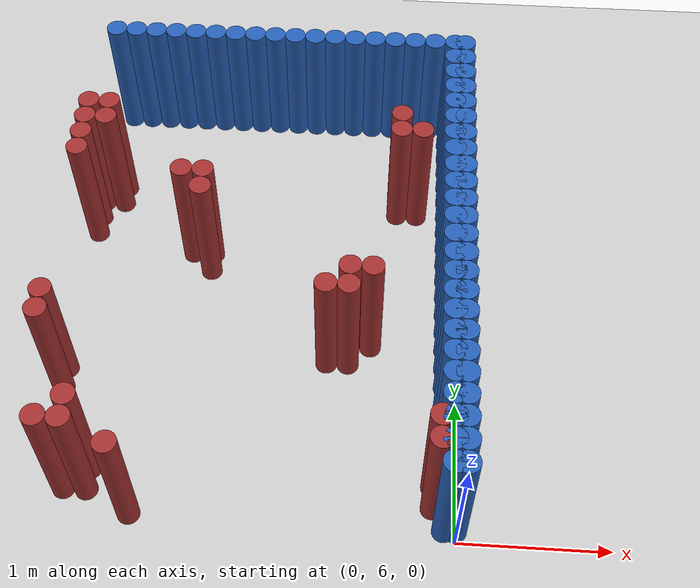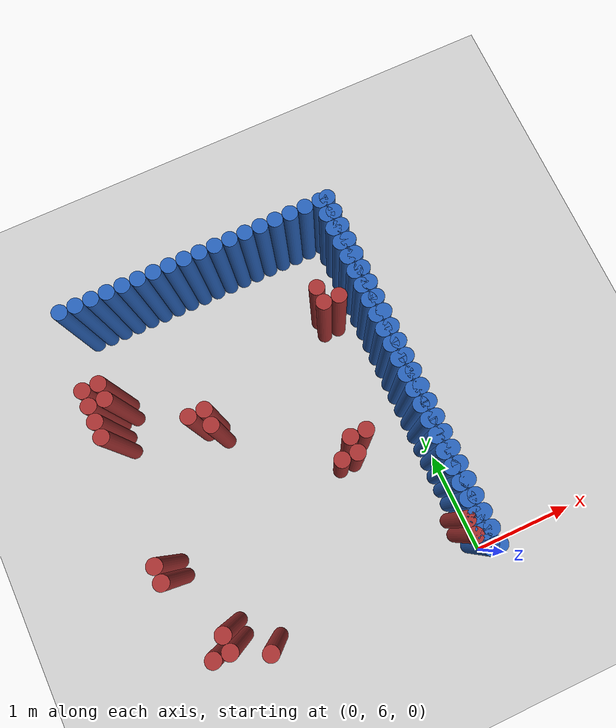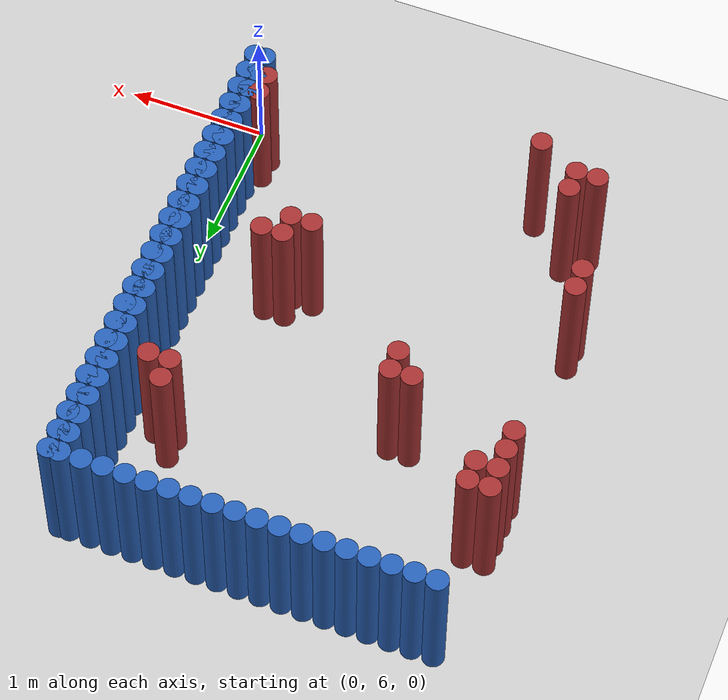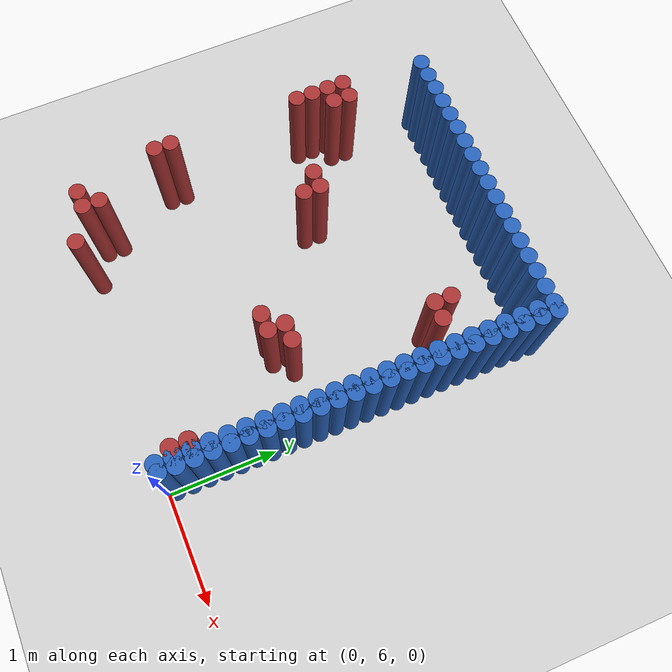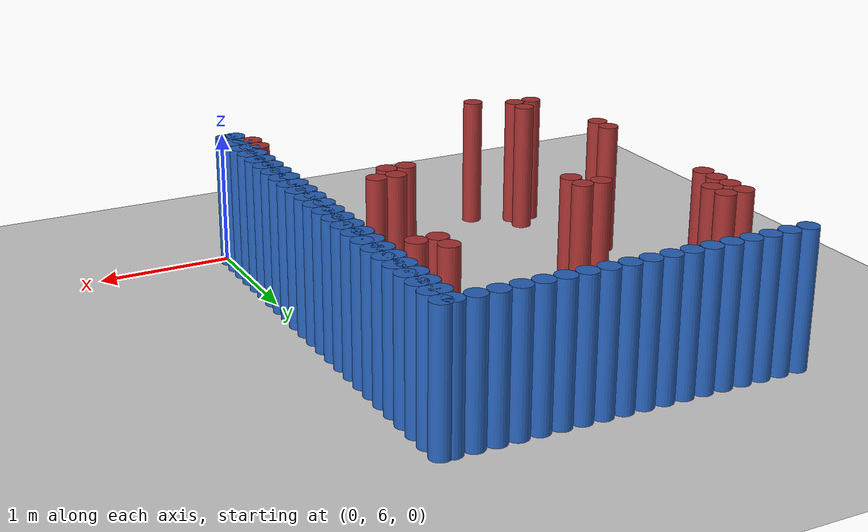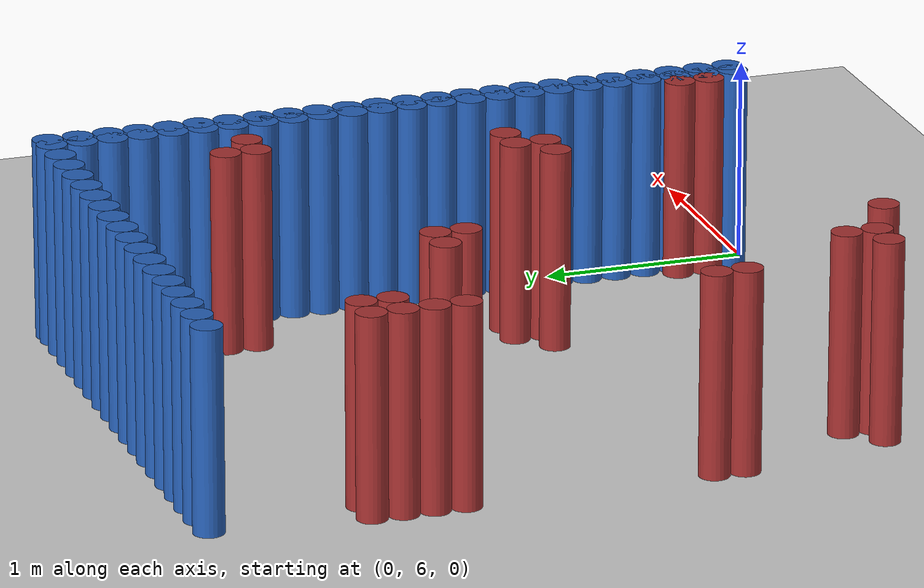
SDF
<sdf version="1.6">
 <world name="barn_world">
  <model name="ground_plane">
   <static>1</static>
   <link name="link">
    <collision name="collision">
     <geometry><plane><normal>0 0 1</normal><size>100 100</size></plane></geometry>
    </collision>
    <visual name="visual">
     <geometry><plane><normal>0 0 1</normal><size>100 100</size></plane></geometry>
     <material>
      <script><uri>file://media/materials/scripts/gazebo.material</uri><name>Gazebo/Grey</name></script>
     </material>
    </visual>
   </link>
  </model>
  <model name="unit_cylinder_201">
   <static>1</static>
   <pose>-2.7000 6.9750 0.5 0 0 0</pose>
   <link name="link">
    <collision name="collision">
     <geometry><cylinder><radius>0.075</radius><length>1</length></cylinder></geometry>
    </collision>
    <visual name="visual">
     <geometry><cylinder><radius>0.075</radius><length>1</length></cylinder></geometry>
     <material><ambient>0.648 0.192 0.192 1</ambient><diffuse>0.648 0.192 0.192 1</diffuse></material>
    </visual>
   </link>
  </model>
  <model name="unit_cylinder_202">
   <static>1</static>
   <pose>-2.7000 7.1250 0.5 0 0 0</pose>
   <link name="link">
    <collision name="collision">
     <geometry><cylinder><radius>0.075</radius><length>1</length></cylinder></geometry>
    </collision>
    <visual name="visual">
     <geometry><cylinder><radius>0.075</radius><length>1</length></cylinder></geometry>
     <material><ambient>0.648 0.192 0.192 1</ambient><diffuse>0.648 0.192 0.192 1</diffuse></material>
    </visual>
   </link>
  </model>
  <model name="unit_cylinder_203">
   <static>1</static>
   <pose>-2.7000 8.3250 0.5 0 0 0</pose>
   <link name="link">
    <collision name="collision">
     <geometry><cylinder><radius>0.075</radius><length>1</length></cylinder></geometry>
    </collision>
    <visual name="visual">
     <geometry><cylinder><radius>0.075</radius><length>1</length></cylinder></geometry>
     <material><ambient>0.648 0.192 0.192 1</ambient><diffuse>0.648 0.192 0.192 1</diffuse></material>
    </visual>
   </link>
  </model>
  <model name="unit_cylinder_204">
   <static>1</static>
   <pose>-2.7000 8.4750 0.5 0 0 0</pose>
   <link name="link">
    <collision name="collision">
     <geometry><cylinder><radius>0.075</radius><length>1</length></cylinder></geometry>
    </collision>
    <visual name="visual">
     <geometry><cylinder><radius>0.075</radius><length>1</length></cylinder></geometry>
     <material><ambient>0.648 0.192 0.192 1</ambient><diffuse>0.648 0.192 0.192 1</diffuse></material>
    </visual>
   </link>
  </model>
  <model name="unit_cylinder_205">
   <static>1</static>
   <pose>-2.7000 8.6250 0.5 0 0 0</pose>
   <link name="link">
    <collision name="collision">
     <geometry><cylinder><radius>0.075</radius><length>1</length></cylinder></geometry>
    </collision>
    <visual name="visual">
     <geometry><cylinder><radius>0.075</radius><length>1</length></cylinder></geometry>
     <material><ambient>0.648 0.192 0.192 1</ambient><diffuse>0.648 0.192 0.192 1</diffuse></material>
    </visual>
   </link>
  </model>
  <model name="unit_cylinder_206">
   <static>1</static>
   <pose>-2.7000 8.7750 0.5 0 0 0</pose>
   <link name="link">
    <collision name="collision">
     <geometry><cylinder><radius>0.075</radius><length>1</length></cylinder></geometry>
    </collision>
    <visual name="visual">
     <geometry><cylinder><radius>0.075</radius><length>1</length></cylinder></geometry>
     <material><ambient>0.648 0.192 0.192 1</ambient><diffuse>0.648 0.192 0.192 1</diffuse></material>
    </visual>
   </link>
  </model>
  <model name="unit_cylinder_209">
   <static>1</static>
   <pose>-2.5500 6.2250 0.5 0 0 0</pose>
   <link name="link">
    <collision name="collision">
     <geometry><cylinder><radius>0.075</radius><length>1</length></cylinder></geometry>
    </collision>
    <visual name="visual">
     <geometry><cylinder><radius>0.075</radius><length>1</length></cylinder></geometry>
     <material><ambient>0.648 0.192 0.192 1</ambient><diffuse>0.648 0.192 0.192 1</diffuse></material>
    </visual>
   </link>
  </model>
  <model name="unit_cylinder_210">
   <static>1</static>
   <pose>-2.5500 8.6250 0.5 0 0 0</pose>
   <link name="link">
    <collision name="collision">
     <geometry><cylinder><radius>0.075</radius><length>1</length></cylinder></geometry>
    </collision>
    <visual name="visual">
     <geometry><cylinder><radius>0.075</radius><length>1</length></cylinder></geometry>
     <material><ambient>0.648 0.192 0.192 1</ambient><diffuse>0.648 0.192 0.192 1</diffuse></material>
    </visual>
   </link>
  </model>
  <model name="unit_cylinder_211">
   <static>1</static>
   <pose>-2.5500 8.7750 0.5 0 0 0</pose>
   <link name="link">
    <collision name="collision">
     <geometry><cylinder><radius>0.075</radius><length>1</length></cylinder></geometry>
    </collision>
    <visual name="visual">
     <geometry><cylinder><radius>0.075</radius><length>1</length></cylinder></geometry>
     <material><ambient>0.648 0.192 0.192 1</ambient><diffuse>0.648 0.192 0.192 1</diffuse></material>
    </visual>
   </link>
  </model>
  <model name="unit_cylinder_213">
   <static>1</static>
   <pose>-2.4000 6.2250 0.5 0 0 0</pose>
   <link name="link">
    <collision name="collision">
     <geometry><cylinder><radius>0.075</radius><length>1</length></cylinder></geometry>
    </collision>
    <visual name="visual">
     <geometry><cylinder><radius>0.075</radius><length>1</length></cylinder></geometry>
     <material><ambient>0.648 0.192 0.192 1</ambient><diffuse>0.648 0.192 0.192 1</diffuse></material>
    </visual>
   </link>
  </model>
  <model name="unit_cylinder_214">
   <static>1</static>
   <pose>-2.4000 6.3750 0.5 0 0 0</pose>
   <link name="link">
    <collision name="collision">
     <geometry><cylinder><radius>0.075</radius><length>1</length></cylinder></geometry>
    </collision>
    <visual name="visual">
     <geometry><cylinder><radius>0.075</radius><length>1</length></cylinder></geometry>
     <material><ambient>0.648 0.192 0.192 1</ambient><diffuse>0.648 0.192 0.192 1</diffuse></material>
    </visual>
   </link>
  </model>
  <model name="unit_cylinder_217">
   <static>1</static>
   <pose>-2.1000 6.0750 0.5 0 0 0</pose>
   <link name="link">
    <collision name="collision">
     <geometry><cylinder><radius>0.075</radius><length>1</length></cylinder></geometry>
    </collision>
    <visual name="visual">
     <geometry><cylinder><radius>0.075</radius><length>1</length></cylinder></geometry>
     <material><ambient>0.648 0.192 0.192 1</ambient><diffuse>0.648 0.192 0.192 1</diffuse></material>
    </visual>
   </link>
  </model>
  <model name="unit_cylinder_219">
   <static>1</static>
   <pose>-1.9500 8.1750 0.5 0 0 0</pose>
   <link name="link">
    <collision name="collision">
     <geometry><cylinder><radius>0.075</radius><length>1</length></cylinder></geometry>
    </collision>
    <visual name="visual">
     <geometry><cylinder><radius>0.075</radius><length>1</length></cylinder></geometry>
     <material><ambient>0.648 0.192 0.192 1</ambient><diffuse>0.648 0.192 0.192 1</diffuse></material>
    </visual>
   </link>
  </model>
  <model name="unit_cylinder_220">
   <static>1</static>
   <pose>-1.8000 8.0250 0.5 0 0 0</pose>
   <link name="link">
    <collision name="collision">
     <geometry><cylinder><radius>0.075</radius><length>1</length></cylinder></geometry>
    </collision>
    <visual name="visual">
     <geometry><cylinder><radius>0.075</radius><length>1</length></cylinder></geometry>
     <material><ambient>0.648 0.192 0.192 1</ambient><diffuse>0.648 0.192 0.192 1</diffuse></material>
    </visual>
   </link>
  </model>
  <model name="unit_cylinder_221">
   <static>1</static>
   <pose>-1.8000 8.1750 0.5 0 0 0</pose>
   <link name="link">
    <collision name="collision">
     <geometry><cylinder><radius>0.075</radius><length>1</length></cylinder></geometry>
    </collision>
    <visual name="visual">
     <geometry><cylinder><radius>0.075</radius><length>1</length></cylinder></geometry>
     <material><ambient>0.648 0.192 0.192 1</ambient><diffuse>0.648 0.192 0.192 1</diffuse></material>
    </visual>
   </link>
  </model>
  <model name="unit_cylinder_229">
   <static>1</static>
   <pose>-0.9000 7.2750 0.5 0 0 0</pose>
   <link name="link">
    <collision name="collision">
     <geometry><cylinder><radius>0.075</radius><length>1</length></cylinder></geometry>
    </collision>
    <visual name="visual">
     <geometry><cylinder><radius>0.075</radius><length>1</length></cylinder></geometry>
     <material><ambient>0.648 0.192 0.192 1</ambient><diffuse>0.648 0.192 0.192 1</diffuse></material>
    </visual>
   </link>
  </model>
  <model name="unit_cylinder_230">
   <static>1</static>
   <pose>-0.7500 7.2750 0.5 0 0 0</pose>
   <link name="link">
    <collision name="collision">
     <geometry><cylinder><radius>0.075</radius><length>1</length></cylinder></geometry>
    </collision>
    <visual name="visual">
     <geometry><cylinder><radius>0.075</radius><length>1</length></cylinder></geometry>
     <material><ambient>0.648 0.192 0.192 1</ambient><diffuse>0.648 0.192 0.192 1</diffuse></material>
    </visual>
   </link>
  </model>
  <model name="unit_cylinder_231">
   <static>1</static>
   <pose>-0.7500 7.4250 0.5 0 0 0</pose>
   <link name="link">
    <collision name="collision">
     <geometry><cylinder><radius>0.075</radius><length>1</length></cylinder></geometry>
    </collision>
    <visual name="visual">
     <geometry><cylinder><radius>0.075</radius><length>1</length></cylinder></geometry>
     <material><ambient>0.648 0.192 0.192 1</ambient><diffuse>0.648 0.192 0.192 1</diffuse></material>
    </visual>
   </link>
  </model>
  <model name="unit_cylinder_232">
   <static>1</static>
   <pose>-0.6000 7.4250 0.5 0 0 0</pose>
   <link name="link">
    <collision name="collision">
     <geometry><cylinder><radius>0.075</radius><length>1</length></cylinder></geometry>
    </collision>
    <visual name="visual">
     <geometry><cylinder><radius>0.075</radius><length>1</length></cylinder></geometry>
     <material><ambient>0.648 0.192 0.192 1</ambient><diffuse>0.648 0.192 0.192 1</diffuse></material>
    </visual>
   </link>
  </model>
  <model name="unit_cylinder_233">
   <static>1</static>
   <pose>-0.4500 8.6250 0.5 0 0 0</pose>
   <link name="link">
    <collision name="collision">
     <geometry><cylinder><radius>0.075</radius><length>1</length></cylinder></geometry>
    </collision>
    <visual name="visual">
     <geometry><cylinder><radius>0.075</radius><length>1</length></cylinder></geometry>
     <material><ambient>0.648 0.192 0.192 1</ambient><diffuse>0.648 0.192 0.192 1</diffuse></material>
    </visual>
   </link>
  </model>
  <model name="unit_cylinder_234">
   <static>1</static>
   <pose>-0.4500 8.7750 0.5 0 0 0</pose>
   <link name="link">
    <collision name="collision">
     <geometry><cylinder><radius>0.075</radius><length>1</length></cylinder></geometry>
    </collision>
    <visual name="visual">
     <geometry><cylinder><radius>0.075</radius><length>1</length></cylinder></geometry>
     <material><ambient>0.648 0.192 0.192 1</ambient><diffuse>0.648 0.192 0.192 1</diffuse></material>
    </visual>
   </link>
  </model>
  <model name="unit_cylinder_235">
   <static>1</static>
   <pose>-0.3000 8.6250 0.5 0 0 0</pose>
   <link name="link">
    <collision name="collision">
     <geometry><cylinder><radius>0.075</radius><length>1</length></cylinder></geometry>
    </collision>
    <visual name="visual">
     <geometry><cylinder><radius>0.075</radius><length>1</length></cylinder></geometry>
     <material><ambient>0.648 0.192 0.192 1</ambient><diffuse>0.648 0.192 0.192 1</diffuse></material>
    </visual>
   </link>
  </model>
  <model name="unit_cylinder_237">
   <static>1</static>
   <pose>-0.1500 6.2250 0.5 0 0 0</pose>
   <link name="link">
    <collision name="collision">
     <geometry><cylinder><radius>0.075</radius><length>1</length></cylinder></geometry>
    </collision>
    <visual name="visual">
     <geometry><cylinder><radius>0.075</radius><length>1</length></cylinder></geometry>
     <material><ambient>0.648 0.192 0.192 1</ambient><diffuse>0.648 0.192 0.192 1</diffuse></material>
    </visual>
   </link>
  </model>
  <model name="unit_cylinder_238">
   <static>1</static>
   <pose>-0.1500 6.3750 0.5 0 0 0</pose>
   <link name="link">
    <collision name="collision">
     <geometry><cylinder><radius>0.075</radius><length>1</length></cylinder></geometry>
    </collision>
    <visual name="visual">
     <geometry><cylinder><radius>0.075</radius><length>1</length></cylinder></geometry>
     <material><ambient>0.648 0.192 0.192 1</ambient><diffuse>0.648 0.192 0.192 1</diffuse></material>
    </visual>
   </link>
  </model>
  <model name="unit_cylinder_245">
   <static>1</static>
   <pose>0.0000 6.0750 0.5 0 0 0</pose>
   <link name="link">
    <collision name="collision">
     <geometry><cylinder><radius>0.075</radius><length>1</length></cylinder></geometry>
    </collision>
    <visual name="visual">
     <geometry><cylinder><radius>0.075</radius><length>1</length></cylinder></geometry>
     <material><ambient>0.152 0.379 0.72 1</ambient><diffuse>0.152 0.379 0.72 1</diffuse></material>
    </visual>
   </link>
  </model>
  <model name="unit_cylinder_246">
   <static>1</static>
   <pose>0.0000 6.2250 0.5 0 0 0</pose>
   <link name="link">
    <collision name="collision">
     <geometry><cylinder><radius>0.075</radius><length>1</length></cylinder></geometry>
    </collision>
    <visual name="visual">
     <geometry><cylinder><radius>0.075</radius><length>1</length></cylinder></geometry>
     <material><ambient>0.152 0.379 0.72 1</ambient><diffuse>0.152 0.379 0.72 1</diffuse></material>
    </visual>
   </link>
  </model>
  <model name="unit_cylinder_247">
   <static>1</static>
   <pose>0.0000 6.3750 0.5 0 0 0</pose>
   <link name="link">
    <collision name="collision">
     <geometry><cylinder><radius>0.075</radius><length>1</length></cylinder></geometry>
    </collision>
    <visual name="visual">
     <geometry><cylinder><radius>0.075</radius><length>1</length></cylinder></geometry>
     <material><ambient>0.152 0.379 0.72 1</ambient><diffuse>0.152 0.379 0.72 1</diffuse></material>
    </visual>
   </link>
  </model>
  <model name="unit_cylinder_248">
   <static>1</static>
   <pose>0.0000 6.5250 0.5 0 0 0</pose>
   <link name="link">
    <collision name="collision">
     <geometry><cylinder><radius>0.075</radius><length>1</length></cylinder></geometry>
    </collision>
    <visual name="visual">
     <geometry><cylinder><radius>0.075</radius><length>1</length></cylinder></geometry>
     <material><ambient>0.152 0.379 0.72 1</ambient><diffuse>0.152 0.379 0.72 1</diffuse></material>
    </visual>
   </link>
  </model>
  <model name="unit_cylinder_249">
   <static>1</static>
   <pose>0.0000 6.6750 0.5 0 0 0</pose>
   <link name="link">
    <collision name="collision">
     <geometry><cylinder><radius>0.075</radius><length>1</length></cylinder></geometry>
    </collision>
    <visual name="visual">
     <geometry><cylinder><radius>0.075</radius><length>1</length></cylinder></geometry>
     <material><ambient>0.152 0.379 0.72 1</ambient><diffuse>0.152 0.379 0.72 1</diffuse></material>
    </visual>
   </link>
  </model>
  <model name="unit_cylinder_250">
   <static>1</static>
   <pose>0.0000 6.8250 0.5 0 0 0</pose>
   <link name="link">
    <collision name="collision">
     <geometry><cylinder><radius>0.075</radius><length>1</length></cylinder></geometry>
    </collision>
    <visual name="visual">
     <geometry><cylinder><radius>0.075</radius><length>1</length></cylinder></geometry>
     <material><ambient>0.152 0.379 0.72 1</ambient><diffuse>0.152 0.379 0.72 1</diffuse></material>
    </visual>
   </link>
  </model>
  <model name="unit_cylinder_251">
   <static>1</static>
   <pose>0.0000 6.9750 0.5 0 0 0</pose>
   <link name="link">
    <collision name="collision">
     <geometry><cylinder><radius>0.075</radius><length>1</length></cylinder></geometry>
    </collision>
    <visual name="visual">
     <geometry><cylinder><radius>0.075</radius><length>1</length></cylinder></geometry>
     <material><ambient>0.152 0.379 0.72 1</ambient><diffuse>0.152 0.379 0.72 1</diffuse></material>
    </visual>
   </link>
  </model>
  <model name="unit_cylinder_252">
   <static>1</static>
   <pose>0.0000 7.1250 0.5 0 0 0</pose>
   <link name="link">
    <collision name="collision">
     <geometry><cylinder><radius>0.075</radius><length>1</length></cylinder></geometry>
    </collision>
    <visual name="visual">
     <geometry><cylinder><radius>0.075</radius><length>1</length></cylinder></geometry>
     <material><ambient>0.152 0.379 0.72 1</ambient><diffuse>0.152 0.379 0.72 1</diffuse></material>
    </visual>
   </link>
  </model>
  <model name="unit_cylinder_253">
   <static>1</static>
   <pose>0.0000 7.2750 0.5 0 0 0</pose>
   <link name="link">
    <collision name="collision">
     <geometry><cylinder><radius>0.075</radius><length>1</length></cylinder></geometry>
    </collision>
    <visual name="visual">
     <geometry><cylinder><radius>0.075</radius><length>1</length></cylinder></geometry>
     <material><ambient>0.152 0.379 0.72 1</ambient><diffuse>0.152 0.379 0.72 1</diffuse></material>
    </visual>
   </link>
  </model>
  <model name="unit_cylinder_254">
   <static>1</static>
   <pose>0.0000 7.4250 0.5 0 0 0</pose>
   <link name="link">
    <collision name="collision">
     <geometry><cylinder><radius>0.075</radius><length>1</length></cylinder></geometry>
    </collision>
    <visual name="visual">
     <geometry><cylinder><radius>0.075</radius><length>1</length></cylinder></geometry>
     <material><ambient>0.152 0.379 0.72 1</ambient><diffuse>0.152 0.379 0.72 1</diffuse></material>
    </visual>
   </link>
  </model>
  <model name="unit_cylinder_255">
   <static>1</static>
   <pose>0.0000 7.5750 0.5 0 0 0</pose>
   <link name="link">
    <collision name="collision">
     <geometry><cylinder><radius>0.075</radius><length>1</length></cylinder></geometry>
    </collision>
    <visual name="visual">
     <geometry><cylinder><radius>0.075</radius><length>1</length></cylinder></geometry>
     <material><ambient>0.152 0.379 0.72 1</ambient><diffuse>0.152 0.379 0.72 1</diffuse></material>
    </visual>
   </link>
  </model>
  <model name="unit_cylinder_256">
   <static>1</static>
   <pose>0.0000 7.7250 0.5 0 0 0</pose>
   <link name="link">
    <collision name="collision">
     <geometry><cylinder><radius>0.075</radius><length>1</length></cylinder></geometry>
    </collision>
    <visual name="visual">
     <geometry><cylinder><radius>0.075</radius><length>1</length></cylinder></geometry>
     <material><ambient>0.152 0.379 0.72 1</ambient><diffuse>0.152 0.379 0.72 1</diffuse></material>
    </visual>
   </link>
  </model>
  <model name="unit_cylinder_257">
   <static>1</static>
   <pose>0.0000 7.8750 0.5 0 0 0</pose>
   <link name="link">
    <collision name="collision">
     <geometry><cylinder><radius>0.075</radius><length>1</length></cylinder></geometry>
    </collision>
    <visual name="visual">
     <geometry><cylinder><radius>0.075</radius><length>1</length></cylinder></geometry>
     <material><ambient>0.152 0.379 0.72 1</ambient><diffuse>0.152 0.379 0.72 1</diffuse></material>
    </visual>
   </link>
  </model>
  <model name="unit_cylinder_258">
   <static>1</static>
   <pose>0.0000 8.0250 0.5 0 0 0</pose>
   <link name="link">
    <collision name="collision">
     <geometry><cylinder><radius>0.075</radius><length>1</length></cylinder></geometry>
    </collision>
    <visual name="visual">
     <geometry><cylinder><radius>0.075</radius><length>1</length></cylinder></geometry>
     <material><ambient>0.152 0.379 0.72 1</ambient><diffuse>0.152 0.379 0.72 1</diffuse></material>
    </visual>
   </link>
  </model>
  <model name="unit_cylinder_259">
   <static>1</static>
   <pose>0.0000 8.1750 0.5 0 0 0</pose>
   <link name="link">
    <collision name="collision">
     <geometry><cylinder><radius>0.075</radius><length>1</length></cylinder></geometry>
    </collision>
    <visual name="visual">
     <geometry><cylinder><radius>0.075</radius><length>1</length></cylinder></geometry>
     <material><ambient>0.152 0.379 0.72 1</ambient><diffuse>0.152 0.379 0.72 1</diffuse></material>
    </visual>
   </link>
  </model>
  <model name="unit_cylinder_260">
   <static>1</static>
   <pose>0.0000 8.3250 0.5 0 0 0</pose>
   <link name="link">
    <collision name="collision">
     <geometry><cylinder><radius>0.075</radius><length>1</length></cylinder></geometry>
    </collision>
    <visual name="visual">
     <geometry><cylinder><radius>0.075</radius><length>1</length></cylinder></geometry>
     <material><ambient>0.152 0.379 0.72 1</ambient><diffuse>0.152 0.379 0.72 1</diffuse></material>
    </visual>
   </link>
  </model>
  <model name="unit_cylinder_261">
   <static>1</static>
   <pose>0.0000 8.4750 0.5 0 0 0</pose>
   <link name="link">
    <collision name="collision">
     <geometry><cylinder><radius>0.075</radius><length>1</length></cylinder></geometry>
    </collision>
    <visual name="visual">
     <geometry><cylinder><radius>0.075</radius><length>1</length></cylinder></geometry>
     <material><ambient>0.152 0.379 0.72 1</ambient><diffuse>0.152 0.379 0.72 1</diffuse></material>
    </visual>
   </link>
  </model>
  <model name="unit_cylinder_262">
   <static>1</static>
   <pose>0.0000 8.6250 0.5 0 0 0</pose>
   <link name="link">
    <collision name="collision">
     <geometry><cylinder><radius>0.075</radius><length>1</length></cylinder></geometry>
    </collision>
    <visual name="visual">
     <geometry><cylinder><radius>0.075</radius><length>1</length></cylinder></geometry>
     <material><ambient>0.152 0.379 0.72 1</ambient><diffuse>0.152 0.379 0.72 1</diffuse></material>
    </visual>
   </link>
  </model>
  <model name="unit_cylinder_263">
   <static>1</static>
   <pose>0.0000 8.7750 0.5 0 0 0</pose>
   <link name="link">
    <collision name="collision">
     <geometry><cylinder><radius>0.075</radius><length>1</length></cylinder></geometry>
    </collision>
    <visual name="visual">
     <geometry><cylinder><radius>0.075</radius><length>1</length></cylinder></geometry>
     <material><ambient>0.152 0.379 0.72 1</ambient><diffuse>0.152 0.379 0.72 1</diffuse></material>
    </visual>
   </link>
  </model>
  <model name="unit_cylinder_264">
   <static>1</static>
   <pose>0.0000 8.9250 0.5 0 0 0</pose>
   <link name="link">
    <collision name="collision">
     <geometry><cylinder><radius>0.075</radius><length>1</length></cylinder></geometry>
    </collision>
    <visual name="visual">
     <geometry><cylinder><radius>0.075</radius><length>1</length></cylinder></geometry>
     <material><ambient>0.152 0.379 0.72 1</ambient><diffuse>0.152 0.379 0.72 1</diffuse></material>
    </visual>
   </link>
  </model>
  <model name="unit_cylinder_265">
   <static>1</static>
   <pose>0.0000 9.0750 0.5 0 0 0</pose>
   <link name="link">
    <collision name="collision">
     <geometry><cylinder><radius>0.075</radius><length>1</length></cylinder></geometry>
    </collision>
    <visual name="visual">
     <geometry><cylinder><radius>0.075</radius><length>1</length></cylinder></geometry>
     <material><ambient>0.152 0.379 0.72 1</ambient><diffuse>0.152 0.379 0.72 1</diffuse></material>
    </visual>
   </link>
  </model>
  <model name="unit_cylinder_266">
   <static>1</static>
   <pose>0.0000 9.2250 0.5 0 0 0</pose>
   <link name="link">
    <collision name="collision">
     <geometry><cylinder><radius>0.075</radius><length>1</length></cylinder></geometry>
    </collision>
    <visual name="visual">
     <geometry><cylinder><radius>0.075</radius><length>1</length></cylinder></geometry>
     <material><ambient>0.152 0.379 0.72 1</ambient><diffuse>0.152 0.379 0.72 1</diffuse></material>
    </visual>
   </link>
  </model>
  <model name="unit_cylinder_267">
   <static>1</static>
   <pose>0.0000 9.3750 0.5 0 0 0</pose>
   <link name="link">
    <collision name="collision">
     <geometry><cylinder><radius>0.075</radius><length>1</length></cylinder></geometry>
    </collision>
    <visual name="visual">
     <geometry><cylinder><radius>0.075</radius><length>1</length></cylinder></geometry>
     <material><ambient>0.152 0.379 0.72 1</ambient><diffuse>0.152 0.379 0.72 1</diffuse></material>
    </visual>
   </link>
  </model>
  <model name="unit_cylinder_268">
   <static>1</static>
   <pose>0.0000 9.5250 0.5 0 0 0</pose>
   <link name="link">
    <collision name="collision">
     <geometry><cylinder><radius>0.075</radius><length>1</length></cylinder></geometry>
    </collision>
    <visual name="visual">
     <geometry><cylinder><radius>0.075</radius><length>1</length></cylinder></geometry>
     <material><ambient>0.152 0.379 0.72 1</ambient><diffuse>0.152 0.379 0.72 1</diffuse></material>
    </visual>
   </link>
  </model>
  <model name="unit_cylinder_269">
   <static>1</static>
   <pose>-0.0750 9.5250 0.5 0 0 0</pose>
   <link name="link">
    <collision name="collision">
     <geometry><cylinder><radius>0.075</radius><length>1</length></cylinder></geometry>
    </collision>
    <visual name="visual">
     <geometry><cylinder><radius>0.075</radius><length>1</length></cylinder></geometry>
     <material><ambient>0.152 0.379 0.72 1</ambient><diffuse>0.152 0.379 0.72 1</diffuse></material>
    </visual>
   </link>
  </model>
  <model name="unit_cylinder_270">
   <static>1</static>
   <pose>-0.2250 9.5250 0.5 0 0 0</pose>
   <link name="link">
    <collision name="collision">
     <geometry><cylinder><radius>0.075</radius><length>1</length></cylinder></geometry>
    </collision>
    <visual name="visual">
     <geometry><cylinder><radius>0.075</radius><length>1</length></cylinder></geometry>
     <material><ambient>0.152 0.379 0.72 1</ambient><diffuse>0.152 0.379 0.72 1</diffuse></material>
    </visual>
   </link>
  </model>
  <model name="unit_cylinder_271">
   <static>1</static>
   <pose>-0.3750 9.5250 0.5 0 0 0</pose>
   <link name="link">
    <collision name="collision">
     <geometry><cylinder><radius>0.075</radius><length>1</length></cylinder></geometry>
    </collision>
    <visual name="visual">
     <geometry><cylinder><radius>0.075</radius><length>1</length></cylinder></geometry>
     <material><ambient>0.152 0.379 0.72 1</ambient><diffuse>0.152 0.379 0.72 1</diffuse></material>
    </visual>
   </link>
  </model>
  <model name="unit_cylinder_272">
   <static>1</static>
   <pose>-0.5250 9.5250 0.5 0 0 0</pose>
   <link name="link">
    <collision name="collision">
     <geometry><cylinder><radius>0.075</radius><length>1</length></cylinder></geometry>
    </collision>
    <visual name="visual">
     <geometry><cylinder><radius>0.075</radius><length>1</length></cylinder></geometry>
     <material><ambient>0.152 0.379 0.72 1</ambient><diffuse>0.152 0.379 0.72 1</diffuse></material>
    </visual>
   </link>
  </model>
  <model name="unit_cylinder_273">
   <static>1</static>
   <pose>-0.6750 9.5250 0.5 0 0 0</pose>
   <link name="link">
    <collision name="collision">
     <geometry><cylinder><radius>0.075</radius><length>1</length></cylinder></geometry>
    </collision>
    <visual name="visual">
     <geometry><cylinder><radius>0.075</radius><length>1</length></cylinder></geometry>
     <material><ambient>0.152 0.379 0.72 1</ambient><diffuse>0.152 0.379 0.72 1</diffuse></material>
    </visual>
   </link>
  </model>
  <model name="unit_cylinder_274">
   <static>1</static>
   <pose>-0.8250 9.5250 0.5 0 0 0</pose>
   <link name="link">
    <collision name="collision">
     <geometry><cylinder><radius>0.075</radius><length>1</length></cylinder></geometry>
    </collision>
    <visual name="visual">
     <geometry><cylinder><radius>0.075</radius><length>1</length></cylinder></geometry>
     <material><ambient>0.152 0.379 0.72 1</ambient><diffuse>0.152 0.379 0.72 1</diffuse></material>
    </visual>
   </link>
  </model>
  <model name="unit_cylinder_275">
   <static>1</static>
   <pose>-0.9750 9.5250 0.5 0 0 0</pose>
   <link name="link">
    <collision name="collision">
     <geometry><cylinder><radius>0.075</radius><length>1</length></cylinder></geometry>
    </collision>
    <visual name="visual">
     <geometry><cylinder><radius>0.075</radius><length>1</length></cylinder></geometry>
     <material><ambient>0.152 0.379 0.72 1</ambient><diffuse>0.152 0.379 0.72 1</diffuse></material>
    </visual>
   </link>
  </model>
  <model name="unit_cylinder_276">
   <static>1</static>
   <pose>-1.1250 9.5250 0.5 0 0 0</pose>
   <link name="link">
    <collision name="collision">
     <geometry><cylinder><radius>0.075</radius><length>1</length></cylinder></geometry>
    </collision>
    <visual name="visual">
     <geometry><cylinder><radius>0.075</radius><length>1</length></cylinder></geometry>
     <material><ambient>0.152 0.379 0.72 1</ambient><diffuse>0.152 0.379 0.72 1</diffuse></material>
    </visual>
   </link>
  </model>
  <model name="unit_cylinder_277">
   <static>1</static>
   <pose>-1.2750 9.5250 0.5 0 0 0</pose>
   <link name="link">
    <collision name="collision">
     <geometry><cylinder><radius>0.075</radius><length>1</length></cylinder></geometry>
    </collision>
    <visual name="visual">
     <geometry><cylinder><radius>0.075</radius><length>1</length></cylinder></geometry>
     <material><ambient>0.152 0.379 0.72 1</ambient><diffuse>0.152 0.379 0.72 1</diffuse></material>
    </visual>
   </link>
  </model>
  <model name="unit_cylinder_278">
   <static>1</static>
   <pose>-1.4250 9.5250 0.5 0 0 0</pose>
   <link name="link">
    <collision name="collision">
     <geometry><cylinder><radius>0.075</radius><length>1</length></cylinder></geometry>
    </collision>
    <visual name="visual">
     <geometry><cylinder><radius>0.075</radius><length>1</length></cylinder></geometry>
     <material><ambient>0.152 0.379 0.72 1</ambient><diffuse>0.152 0.379 0.72 1</diffuse></material>
    </visual>
   </link>
  </model>
  <model name="unit_cylinder_279">
   <static>1</static>
   <pose>-1.5750 9.5250 0.5 0 0 0</pose>
   <link name="link">
    <collision name="collision">
     <geometry><cylinder><radius>0.075</radius><length>1</length></cylinder></geometry>
    </collision>
    <visual name="visual">
     <geometry><cylinder><radius>0.075</radius><length>1</length></cylinder></geometry>
     <material><ambient>0.152 0.379 0.72 1</ambient><diffuse>0.152 0.379 0.72 1</diffuse></material>
    </visual>
   </link>
  </model>
  <model name="unit_cylinder_280">
   <static>1</static>
   <pose>-1.7250 9.5250 0.5 0 0 0</pose>
   <link name="link">
    <collision name="collision">
     <geometry><cylinder><radius>0.075</radius><length>1</length></cylinder></geometry>
    </collision>
    <visual name="visual">
     <geometry><cylinder><radius>0.075</radius><length>1</length></cylinder></geometry>
     <material><ambient>0.152 0.379 0.72 1</ambient><diffuse>0.152 0.379 0.72 1</diffuse></material>
    </visual>
   </link>
  </model>
  <model name="unit_cylinder_281">
   <static>1</static>
   <pose>-1.8750 9.5250 0.5 0 0 0</pose>
   <link name="link">
    <collision name="collision">
     <geometry><cylinder><radius>0.075</radius><length>1</length></cylinder></geometry>
    </collision>
    <visual name="visual">
     <geometry><cylinder><radius>0.075</radius><length>1</length></cylinder></geometry>
     <material><ambient>0.152 0.379 0.72 1</ambient><diffuse>0.152 0.379 0.72 1</diffuse></material>
    </visual>
   </link>
  </model>
  <model name="unit_cylinder_282">
   <static>1</static>
   <pose>-2.0250 9.5250 0.5 0 0 0</pose>
   <link name="link">
    <collision name="collision">
     <geometry><cylinder><radius>0.075</radius><length>1</length></cylinder></geometry>
    </collision>
    <visual name="visual">
     <geometry><cylinder><radius>0.075</radius><length>1</length></cylinder></geometry>
     <material><ambient>0.152 0.379 0.72 1</ambient><diffuse>0.152 0.379 0.72 1</diffuse></material>
    </visual>
   </link>
  </model>
  <model name="unit_cylinder_283">
   <static>1</static>
   <pose>-2.1750 9.5250 0.5 0 0 0</pose>
   <link name="link">
    <collision name="collision">
     <geometry><cylinder><radius>0.075</radius><length>1</length></cylinder></geometry>
    </collision>
    <visual name="visual">
     <geometry><cylinder><radius>0.075</radius><length>1</length></cylinder></geometry>
     <material><ambient>0.152 0.379 0.72 1</ambient><diffuse>0.152 0.379 0.72 1</diffuse></material>
    </visual>
   </link>
  </model>
  <model name="unit_cylinder_284">
   <static>1</static>
   <pose>-2.3250 9.5250 0.5 0 0 0</pose>
   <link name="link">
    <collision name="collision">
     <geometry><cylinder><radius>0.075</radius><length>1</length></cylinder></geometry>
    </collision>
    <visual name="visual">
     <geometry><cylinder><radius>0.075</radius><length>1</length></cylinder></geometry>
     <material><ambient>0.152 0.379 0.72 1</ambient><diffuse>0.152 0.379 0.72 1</diffuse></material>
    </visual>
   </link>
  </model>
  <model name="unit_cylinder_285">
   <static>1</static>
   <pose>-2.4750 9.5250 0.5 0 0 0</pose>
   <link name="link">
    <collision name="collision">
     <geometry><cylinder><radius>0.075</radius><length>1</length></cylinder></geometry>
    </collision>
    <visual name="visual">
     <geometry><cylinder><radius>0.075</radius><length>1</length></cylinder></geometry>
     <material><ambient>0.152 0.379 0.72 1</ambient><diffuse>0.152 0.379 0.72 1</diffuse></material>
    </visual>
   </link>
  </model>
  <model name="unit_cylinder_286">
   <static>1</static>
   <pose>-2.6250 9.5250 0.5 0 0 0</pose>
   <link name="link">
    <collision name="collision">
     <geometry><cylinder><radius>0.075</radius><length>1</length></cylinder></geometry>
    </collision>
    <visual name="visual">
     <geometry><cylinder><radius>0.075</radius><length>1</length></cylinder></geometry>
     <material><ambient>0.152 0.379 0.72 1</ambient><diffuse>0.152 0.379 0.72 1</diffuse></material>
    </visual>
   </link>
  </model>
  <model name="unit_cylinder_311">
   <static>1</static>
   <pose>-0.0750 6.0750 0.5 0 0 0</pose>
   <link name="link">
    <collision name="collision">
     <geometry><cylinder><radius>0.075</radius><length>1</length></cylinder></geometry>
    </collision>
    <visual name="visual">
     <geometry><cylinder><radius>0.075</radius><length>1</length></cylinder></geometry>
     <material><ambient>0.152 0.379 0.72 1</ambient><diffuse>0.152 0.379 0.72 1</diffuse></material>
    </visual>
   </link>
  </model>
  <model name="unit_cylinder_313">
   <static>1</static>
   <pose>-0.0750 6.2250 0.5 0 0 0</pose>
   <link name="link">
    <collision name="collision">
     <geometry><cylinder><radius>0.075</radius><length>1</length></cylinder></geometry>
    </collision>
    <visual name="visual">
     <geometry><cylinder><radius>0.075</radius><length>1</length></cylinder></geometry>
     <material><ambient>0.152 0.379 0.72 1</ambient><diffuse>0.152 0.379 0.72 1</diffuse></material>
    </visual>
   </link>
  </model>
  <model name="unit_cylinder_315">
   <static>1</static>
   <pose>-0.0750 6.3750 0.5 0 0 0</pose>
   <link name="link">
    <collision name="collision">
     <geometry><cylinder><radius>0.075</radius><length>1</length></cylinder></geometry>
    </collision>
    <visual name="visual">
     <geometry><cylinder><radius>0.075</radius><length>1</length></cylinder></geometry>
     <material><ambient>0.152 0.379 0.72 1</ambient><diffuse>0.152 0.379 0.72 1</diffuse></material>
    </visual>
   </link>
  </model>
  <model name="unit_cylinder_317">
   <static>1</static>
   <pose>-0.0750 6.5250 0.5 0 0 0</pose>
   <link name="link">
    <collision name="collision">
     <geometry><cylinder><radius>0.075</radius><length>1</length></cylinder></geometry>
    </collision>
    <visual name="visual">
     <geometry><cylinder><radius>0.075</radius><length>1</length></cylinder></geometry>
     <material><ambient>0.152 0.379 0.72 1</ambient><diffuse>0.152 0.379 0.72 1</diffuse></material>
    </visual>
   </link>
  </model>
  <model name="unit_cylinder_319">
   <static>1</static>
   <pose>-0.0750 6.6750 0.5 0 0 0</pose>
   <link name="link">
    <collision name="collision">
     <geometry><cylinder><radius>0.075</radius><length>1</length></cylinder></geometry>
    </collision>
    <visual name="visual">
     <geometry><cylinder><radius>0.075</radius><length>1</length></cylinder></geometry>
     <material><ambient>0.152 0.379 0.72 1</ambient><diffuse>0.152 0.379 0.72 1</diffuse></material>
    </visual>
   </link>
  </model>
  <model name="unit_cylinder_321">
   <static>1</static>
   <pose>-0.0750 6.8250 0.5 0 0 0</pose>
   <link name="link">
    <collision name="collision">
     <geometry><cylinder><radius>0.075</radius><length>1</length></cylinder></geometry>
    </collision>
    <visual name="visual">
     <geometry><cylinder><radius>0.075</radius><length>1</length></cylinder></geometry>
     <material><ambient>0.152 0.379 0.72 1</ambient><diffuse>0.152 0.379 0.72 1</diffuse></material>
    </visual>
   </link>
  </model>
  <model name="unit_cylinder_323">
   <static>1</static>
   <pose>-0.0750 6.9750 0.5 0 0 0</pose>
   <link name="link">
    <collision name="collision">
     <geometry><cylinder><radius>0.075</radius><length>1</length></cylinder></geometry>
    </collision>
    <visual name="visual">
     <geometry><cylinder><radius>0.075</radius><length>1</length></cylinder></geometry>
     <material><ambient>0.152 0.379 0.72 1</ambient><diffuse>0.152 0.379 0.72 1</diffuse></material>
    </visual>
   </link>
  </model>
  <model name="unit_cylinder_325">
   <static>1</static>
   <pose>-0.0750 7.1250 0.5 0 0 0</pose>
   <link name="link">
    <collision name="collision">
     <geometry><cylinder><radius>0.075</radius><length>1</length></cylinder></geometry>
    </collision>
    <visual name="visual">
     <geometry><cylinder><radius>0.075</radius><length>1</length></cylinder></geometry>
     <material><ambient>0.152 0.379 0.72 1</ambient><diffuse>0.152 0.379 0.72 1</diffuse></material>
    </visual>
   </link>
  </model>
  <model name="unit_cylinder_327">
   <static>1</static>
   <pose>-0.0750 7.2750 0.5 0 0 0</pose>
   <link name="link">
    <collision name="collision">
     <geometry><cylinder><radius>0.075</radius><length>1</length></cylinder></geometry>
    </collision>
    <visual name="visual">
     <geometry><cylinder><radius>0.075</radius><length>1</length></cylinder></geometry>
     <material><ambient>0.152 0.379 0.72 1</ambient><diffuse>0.152 0.379 0.72 1</diffuse></material>
    </visual>
   </link>
  </model>
  <model name="unit_cylinder_329">
   <static>1</static>
   <pose>-0.0750 7.4250 0.5 0 0 0</pose>
   <link name="link">
    <collision name="collision">
     <geometry><cylinder><radius>0.075</radius><length>1</length></cylinder></geometry>
    </collision>
    <visual name="visual">
     <geometry><cylinder><radius>0.075</radius><length>1</length></cylinder></geometry>
     <material><ambient>0.152 0.379 0.72 1</ambient><diffuse>0.152 0.379 0.72 1</diffuse></material>
    </visual>
   </link>
  </model>
  <model name="unit_cylinder_331">
   <static>1</static>
   <pose>-0.0750 7.5750 0.5 0 0 0</pose>
   <link name="link">
    <collision name="collision">
     <geometry><cylinder><radius>0.075</radius><length>1</length></cylinder></geometry>
    </collision>
    <visual name="visual">
     <geometry><cylinder><radius>0.075</radius><length>1</length></cylinder></geometry>
     <material><ambient>0.152 0.379 0.72 1</ambient><diffuse>0.152 0.379 0.72 1</diffuse></material>
    </visual>
   </link>
  </model>
  <model name="unit_cylinder_333">
   <static>1</static>
   <pose>-0.0750 7.7250 0.5 0 0 0</pose>
   <link name="link">
    <collision name="collision">
     <geometry><cylinder><radius>0.075</radius><length>1</length></cylinder></geometry>
    </collision>
    <visual name="visual">
     <geometry><cylinder><radius>0.075</radius><length>1</length></cylinder></geometry>
     <material><ambient>0.152 0.379 0.72 1</ambient><diffuse>0.152 0.379 0.72 1</diffuse></material>
    </visual>
   </link>
  </model>
  <model name="unit_cylinder_335">
   <static>1</static>
   <pose>-0.0750 7.8750 0.5 0 0 0</pose>
   <link name="link">
    <collision name="collision">
     <geometry><cylinder><radius>0.075</radius><length>1</length></cylinder></geometry>
    </collision>
    <visual name="visual">
     <geometry><cylinder><radius>0.075</radius><length>1</length></cylinder></geometry>
     <material><ambient>0.152 0.379 0.72 1</ambient><diffuse>0.152 0.379 0.72 1</diffuse></material>
    </visual>
   </link>
  </model>
  <model name="unit_cylinder_337">
   <static>1</static>
   <pose>-0.0750 8.0250 0.5 0 0 0</pose>
   <link name="link">
    <collision name="collision">
     <geometry><cylinder><radius>0.075</radius><length>1</length></cylinder></geometry>
    </collision>
    <visual name="visual">
     <geometry><cylinder><radius>0.075</radius><length>1</length></cylinder></geometry>
     <material><ambient>0.152 0.379 0.72 1</ambient><diffuse>0.152 0.379 0.72 1</diffuse></material>
    </visual>
   </link>
  </model>
  <model name="unit_cylinder_339">
   <static>1</static>
   <pose>-0.0750 8.1750 0.5 0 0 0</pose>
   <link name="link">
    <collision name="collision">
     <geometry><cylinder><radius>0.075</radius><length>1</length></cylinder></geometry>
    </collision>
    <visual name="visual">
     <geometry><cylinder><radius>0.075</radius><length>1</length></cylinder></geometry>
     <material><ambient>0.152 0.379 0.72 1</ambient><diffuse>0.152 0.379 0.72 1</diffuse></material>
    </visual>
   </link>
  </model>
  <model name="unit_cylinder_341">
   <static>1</static>
   <pose>-0.0750 8.3250 0.5 0 0 0</pose>
   <link name="link">
    <collision name="collision">
     <geometry><cylinder><radius>0.075</radius><length>1</length></cylinder></geometry>
    </collision>
    <visual name="visual">
     <geometry><cylinder><radius>0.075</radius><length>1</length></cylinder></geometry>
     <material><ambient>0.152 0.379 0.72 1</ambient><diffuse>0.152 0.379 0.72 1</diffuse></material>
    </visual>
   </link>
  </model>
  <model name="unit_cylinder_343">
   <static>1</static>
   <pose>-0.0750 8.4750 0.5 0 0 0</pose>
   <link name="link">
    <collision name="collision">
     <geometry><cylinder><radius>0.075</radius><length>1</length></cylinder></geometry>
    </collision>
    <visual name="visual">
     <geometry><cylinder><radius>0.075</radius><length>1</length></cylinder></geometry>
     <material><ambient>0.152 0.379 0.72 1</ambient><diffuse>0.152 0.379 0.72 1</diffuse></material>
    </visual>
   </link>
  </model>
  <model name="unit_cylinder_345">
   <static>1</static>
   <pose>-0.0750 8.6250 0.5 0 0 0</pose>
   <link name="link">
    <collision name="collision">
     <geometry><cylinder><radius>0.075</radius><length>1</length></cylinder></geometry>
    </collision>
    <visual name="visual">
     <geometry><cylinder><radius>0.075</radius><length>1</length></cylinder></geometry>
     <material><ambient>0.152 0.379 0.72 1</ambient><diffuse>0.152 0.379 0.72 1</diffuse></material>
    </visual>
   </link>
  </model>
  <model name="unit_cylinder_347">
   <static>1</static>
   <pose>-0.0750 8.7750 0.5 0 0 0</pose>
   <link name="link">
    <collision name="collision">
     <geometry><cylinder><radius>0.075</radius><length>1</length></cylinder></geometry>
    </collision>
    <visual name="visual">
     <geometry><cylinder><radius>0.075</radius><length>1</length></cylinder></geometry>
     <material><ambient>0.152 0.379 0.72 1</ambient><diffuse>0.152 0.379 0.72 1</diffuse></material>
    </visual>
   </link>
  </model>
  <model name="unit_cylinder_349">
   <static>1</static>
   <pose>-0.0750 8.9250 0.5 0 0 0</pose>
   <link name="link">
    <collision name="collision">
     <geometry><cylinder><radius>0.075</radius><length>1</length></cylinder></geometry>
    </collision>
    <visual name="visual">
     <geometry><cylinder><radius>0.075</radius><length>1</length></cylinder></geometry>
     <material><ambient>0.152 0.379 0.72 1</ambient><diffuse>0.152 0.379 0.72 1</diffuse></material>
    </visual>
   </link>
  </model>
  <model name="unit_cylinder_351">
   <static>1</static>
   <pose>-0.0750 9.0750 0.5 0 0 0</pose>
   <link name="link">
    <collision name="collision">
     <geometry><cylinder><radius>0.075</radius><length>1</length></cylinder></geometry>
    </collision>
    <visual name="visual">
     <geometry><cylinder><radius>0.075</radius><length>1</length></cylinder></geometry>
     <material><ambient>0.152 0.379 0.72 1</ambient><diffuse>0.152 0.379 0.72 1</diffuse></material>
    </visual>
   </link>
  </model>
  <model name="unit_cylinder_353">
   <static>1</static>
   <pose>-0.0750 9.2250 0.5 0 0 0</pose>
   <link name="link">
    <collision name="collision">
     <geometry><cylinder><radius>0.075</radius><length>1</length></cylinder></geometry>
    </collision>
    <visual name="visual">
     <geometry><cylinder><radius>0.075</radius><length>1</length></cylinder></geometry>
     <material><ambient>0.152 0.379 0.72 1</ambient><diffuse>0.152 0.379 0.72 1</diffuse></material>
    </visual>
   </link>
  </model>
  <model name="unit_cylinder_355">
   <static>1</static>
   <pose>-0.0750 9.3750 0.5 0 0 0</pose>
   <link name="link">
    <collision name="collision">
     <geometry><cylinder><radius>0.075</radius><length>1</length></cylinder></geometry>
    </collision>
    <visual name="visual">
     <geometry><cylinder><radius>0.075</radius><length>1</length></cylinder></geometry>
     <material><ambient>0.152 0.379 0.72 1</ambient><diffuse>0.152 0.379 0.72 1</diffuse></material>
    </visual>
   </link>
  </model>
 </world>
</sdf>
